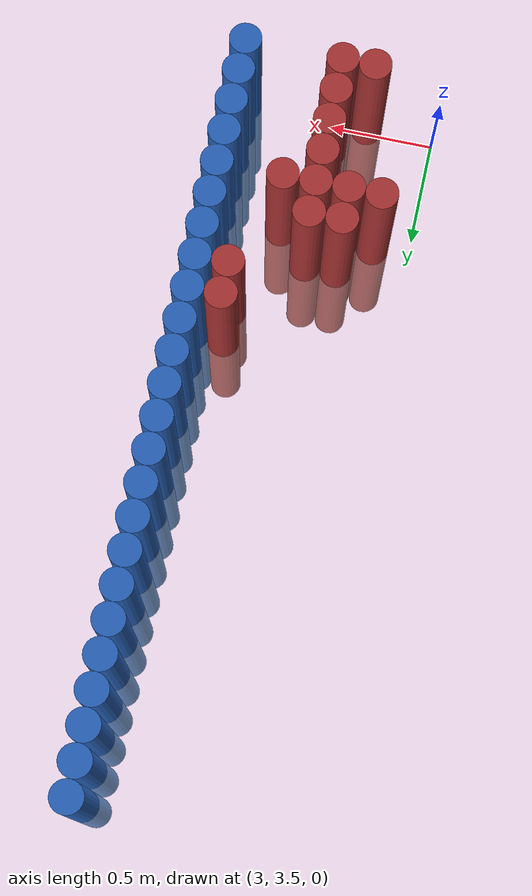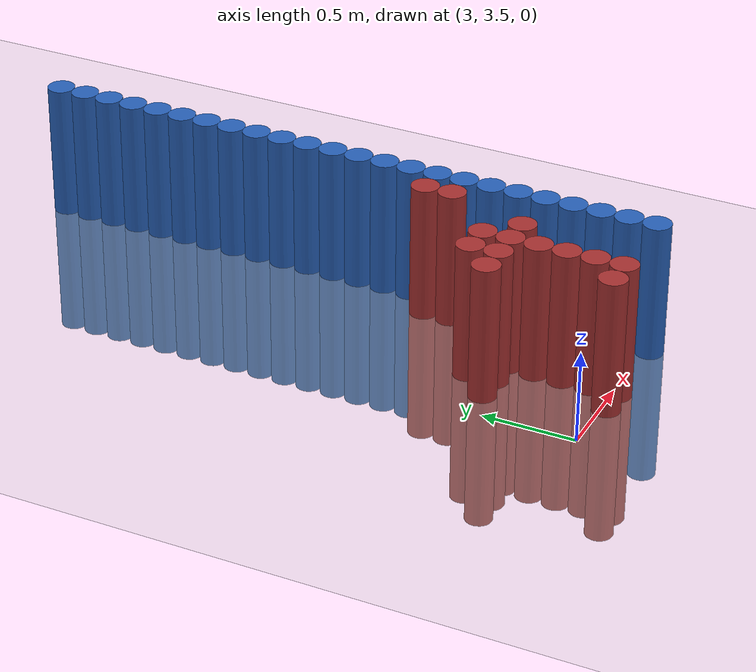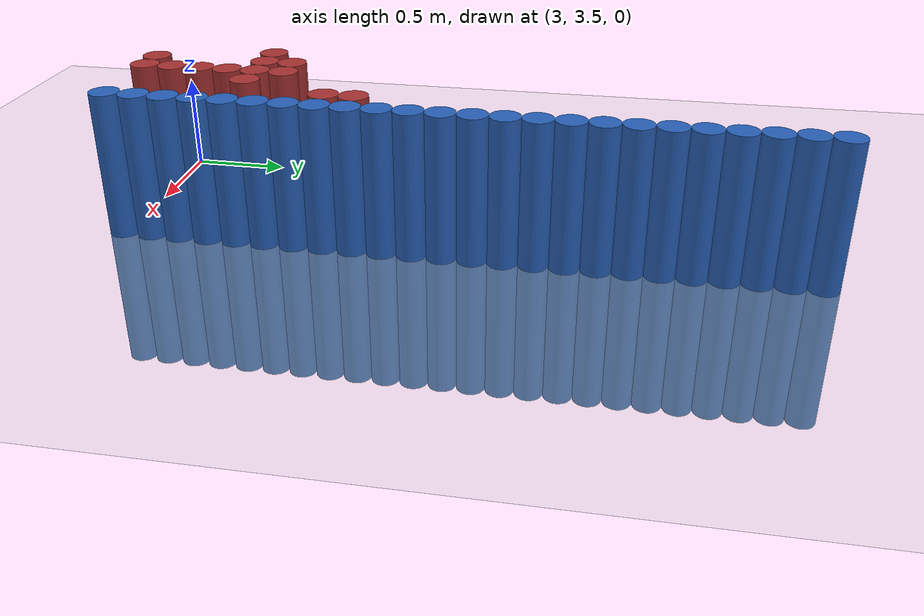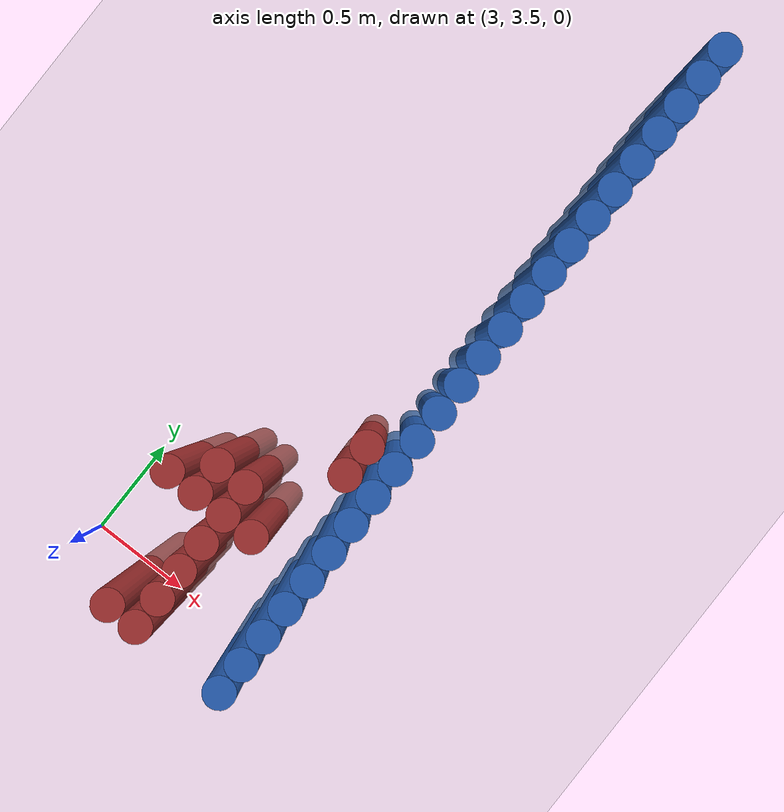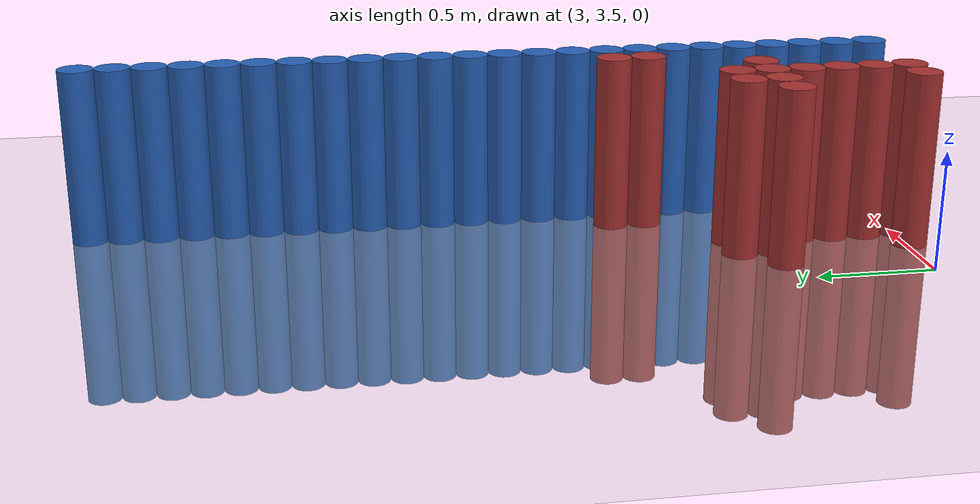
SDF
<sdf version="1.6">
 <world name="default">
  <model name="ground_plane">
   <static>1</static>
   <link name="link">
    <collision name="collision">
     <geometry><plane><normal>0 0 1</normal><size>100 100</size></plane></geometry>
     <surface><friction><ode><mu>100</mu><mu2>50</mu2></ode></friction></surface>
    </collision>
    <visual name="visual">
     <cast_shadows>0</cast_shadows>
     <geometry><plane><normal>0 0 1</normal><size>100 100</size></plane></geometry>
     <material>
      <script><uri>file://media/materials/scripts/gazebo.material</uri><name>Gazebo/Grey</name></script>
     </material>
    </visual>
   </link>
  </model>
  <model name="unit_cylinder_160">
   <static>1</static>
   <pose>3.925000 3.475000 0.000000 0.000000 0.000000 0.000000</pose>
   <link name="link">
    <inertial>
     <mass>1</mass>
     <inertia><ixx>0.145833</ixx><ixy>0</ixy><ixz>0</ixz><iyy>0.145833</iyy><iyz>0</iyz><izz>0.125</izz></inertia>
    </inertial>
    <collision name="collision">
     <geometry><cylinder><radius>0.075000</radius><length>1.5</length></cylinder></geometry>
    </collision>
    <visual name="visual">
     <geometry><cylinder><radius>0.075000</radius><length>1.5</length></cylinder></geometry>
     <material>
      <ambient>0.152000 0.379000 0.720000 1</ambient>
      <diffuse>0.152000 0.379000 0.720000 1</diffuse>
     </material>
     <material>
      <script><name>Gazebo/Grey</name><uri>file://media/materials/scripts/gazebo.material</uri></script>
     </material>
    </visual>
   </link>
  </model>
  <model name="unit_cylinder_162">
   <static>1</static>
   <pose>3.925000 3.625000 0.000000 0.000000 0.000000 0.000000</pose>
   <link name="link">
    <inertial>
     <mass>1</mass>
     <inertia><ixx>0.145833</ixx><ixy>0</ixy><ixz>0</ixz><iyy>0.145833</iyy><iyz>0</iyz><izz>0.125</izz></inertia>
    </inertial>
    <collision name="collision">
     <geometry><cylinder><radius>0.075000</radius><length>1.5</length></cylinder></geometry>
    </collision>
    <visual name="visual">
     <geometry><cylinder><radius>0.075000</radius><length>1.5</length></cylinder></geometry>
     <material>
      <ambient>0.152000 0.379000 0.720000 1</ambient>
      <diffuse>0.152000 0.379000 0.720000 1</diffuse>
     </material>
     <material>
      <script><name>Gazebo/Grey</name><uri>file://media/materials/scripts/gazebo.material</uri></script>
     </material>
    </visual>
   </link>
  </model>
  <model name="unit_cylinder_164">
   <static>1</static>
   <pose>3.925000 3.775000 0.000000 0.000000 0.000000 0.000000</pose>
   <link name="link">
    <inertial>
     <mass>1</mass>
     <inertia><ixx>0.145833</ixx><ixy>0</ixy><ixz>0</ixz><iyy>0.145833</iyy><iyz>0</iyz><izz>0.125</izz></inertia>
    </inertial>
    <collision name="collision">
     <geometry><cylinder><radius>0.075000</radius><length>1.5</length></cylinder></geometry>
    </collision>
    <visual name="visual">
     <geometry><cylinder><radius>0.075000</radius><length>1.5</length></cylinder></geometry>
     <material>
      <ambient>0.152000 0.379000 0.720000 1</ambient>
      <diffuse>0.152000 0.379000 0.720000 1</diffuse>
     </material>
     <material>
      <script><name>Gazebo/Grey</name><uri>file://media/materials/scripts/gazebo.material</uri></script>
     </material>
    </visual>
   </link>
  </model>
  <model name="unit_cylinder_166">
   <static>1</static>
   <pose>3.925000 3.925000 0.000000 0.000000 0.000000 0.000000</pose>
   <link name="link">
    <inertial>
     <mass>1</mass>
     <inertia><ixx>0.145833</ixx><ixy>0</ixy><ixz>0</ixz><iyy>0.145833</iyy><iyz>0</iyz><izz>0.125</izz></inertia>
    </inertial>
    <collision name="collision">
     <geometry><cylinder><radius>0.075000</radius><length>1.5</length></cylinder></geometry>
    </collision>
    <visual name="visual">
     <geometry><cylinder><radius>0.075000</radius><length>1.5</length></cylinder></geometry>
     <material>
      <ambient>0.152000 0.379000 0.720000 1</ambient>
      <diffuse>0.152000 0.379000 0.720000 1</diffuse>
     </material>
     <material>
      <script><name>Gazebo/Grey</name><uri>file://media/materials/scripts/gazebo.material</uri></script>
     </material>
    </visual>
   </link>
  </model>
  <model name="unit_cylinder_168">
   <static>1</static>
   <pose>3.925000 4.075000 0.000000 0.000000 0.000000 0.000000</pose>
   <link name="link">
    <inertial>
     <mass>1</mass>
     <inertia><ixx>0.145833</ixx><ixy>0</ixy><ixz>0</ixz><iyy>0.145833</iyy><iyz>0</iyz><izz>0.125</izz></inertia>
    </inertial>
    <collision name="collision">
     <geometry><cylinder><radius>0.075000</radius><length>1.5</length></cylinder></geometry>
    </collision>
    <visual name="visual">
     <geometry><cylinder><radius>0.075000</radius><length>1.5</length></cylinder></geometry>
     <material>
      <ambient>0.152000 0.379000 0.720000 1</ambient>
      <diffuse>0.152000 0.379000 0.720000 1</diffuse>
     </material>
     <material>
      <script><name>Gazebo/Grey</name><uri>file://media/materials/scripts/gazebo.material</uri></script>
     </material>
    </visual>
   </link>
  </model>
  <model name="unit_cylinder_170">
   <static>1</static>
   <pose>3.925000 4.225000 0.000000 0.000000 0.000000 0.000000</pose>
   <link name="link">
    <inertial>
     <mass>1</mass>
     <inertia><ixx>0.145833</ixx><ixy>0</ixy><ixz>0</ixz><iyy>0.145833</iyy><iyz>0</iyz><izz>0.125</izz></inertia>
    </inertial>
    <collision name="collision">
     <geometry><cylinder><radius>0.075000</radius><length>1.5</length></cylinder></geometry>
    </collision>
    <visual name="visual">
     <geometry><cylinder><radius>0.075000</radius><length>1.5</length></cylinder></geometry>
     <material>
      <ambient>0.152000 0.379000 0.720000 1</ambient>
      <diffuse>0.152000 0.379000 0.720000 1</diffuse>
     </material>
     <material>
      <script><name>Gazebo/Grey</name><uri>file://media/materials/scripts/gazebo.material</uri></script>
     </material>
    </visual>
   </link>
  </model>
  <model name="unit_cylinder_172">
   <static>1</static>
   <pose>3.925000 4.375000 0.000000 0.000000 0.000000 0.000000</pose>
   <link name="link">
    <inertial>
     <mass>1</mass>
     <inertia><ixx>0.145833</ixx><ixy>0</ixy><ixz>0</ixz><iyy>0.145833</iyy><iyz>0</iyz><izz>0.125</izz></inertia>
    </inertial>
    <collision name="collision">
     <geometry><cylinder><radius>0.075000</radius><length>1.5</length></cylinder></geometry>
    </collision>
    <visual name="visual">
     <geometry><cylinder><radius>0.075000</radius><length>1.5</length></cylinder></geometry>
     <material>
      <ambient>0.152000 0.379000 0.720000 1</ambient>
      <diffuse>0.152000 0.379000 0.720000 1</diffuse>
     </material>
     <material>
      <script><name>Gazebo/Grey</name><uri>file://media/materials/scripts/gazebo.material</uri></script>
     </material>
    </visual>
   </link>
  </model>
  <model name="unit_cylinder_174">
   <static>1</static>
   <pose>3.925000 4.525000 0.000000 0.000000 0.000000 0.000000</pose>
   <link name="link">
    <inertial>
     <mass>1</mass>
     <inertia><ixx>0.145833</ixx><ixy>0</ixy><ixz>0</ixz><iyy>0.145833</iyy><iyz>0</iyz><izz>0.125</izz></inertia>
    </inertial>
    <collision name="collision">
     <geometry><cylinder><radius>0.075000</radius><length>1.5</length></cylinder></geometry>
    </collision>
    <visual name="visual">
     <geometry><cylinder><radius>0.075000</radius><length>1.5</length></cylinder></geometry>
     <material>
      <ambient>0.152000 0.379000 0.720000 1</ambient>
      <diffuse>0.152000 0.379000 0.720000 1</diffuse>
     </material>
     <material>
      <script><name>Gazebo/Grey</name><uri>file://media/materials/scripts/gazebo.material</uri></script>
     </material>
    </visual>
   </link>
  </model>
  <model name="unit_cylinder_176">
   <static>1</static>
   <pose>3.925000 4.675000 0.000000 0.000000 0.000000 0.000000</pose>
   <link name="link">
    <inertial>
     <mass>1</mass>
     <inertia><ixx>0.145833</ixx><ixy>0</ixy><ixz>0</ixz><iyy>0.145833</iyy><iyz>0</iyz><izz>0.125</izz></inertia>
    </inertial>
    <collision name="collision">
     <geometry><cylinder><radius>0.075000</radius><length>1.5</length></cylinder></geometry>
    </collision>
    <visual name="visual">
     <geometry><cylinder><radius>0.075000</radius><length>1.5</length></cylinder></geometry>
     <material>
      <ambient>0.152000 0.379000 0.720000 1</ambient>
      <diffuse>0.152000 0.379000 0.720000 1</diffuse>
     </material>
     <material>
      <script><name>Gazebo/Grey</name><uri>file://media/materials/scripts/gazebo.material</uri></script>
     </material>
    </visual>
   </link>
  </model>
  <model name="unit_cylinder_178">
   <static>1</static>
   <pose>3.925000 4.825000 0.000000 0.000000 0.000000 0.000000</pose>
   <link name="link">
    <inertial>
     <mass>1</mass>
     <inertia><ixx>0.145833</ixx><ixy>0</ixy><ixz>0</ixz><iyy>0.145833</iyy><iyz>0</iyz><izz>0.125</izz></inertia>
    </inertial>
    <collision name="collision">
     <geometry><cylinder><radius>0.075000</radius><length>1.5</length></cylinder></geometry>
    </collision>
    <visual name="visual">
     <geometry><cylinder><radius>0.075000</radius><length>1.5</length></cylinder></geometry>
     <material>
      <ambient>0.152000 0.379000 0.720000 1</ambient>
      <diffuse>0.152000 0.379000 0.720000 1</diffuse>
     </material>
     <material>
      <script><name>Gazebo/Grey</name><uri>file://media/materials/scripts/gazebo.material</uri></script>
     </material>
    </visual>
   </link>
  </model>
  <model name="unit_cylinder_180">
   <static>1</static>
   <pose>3.925000 4.975000 0.000000 0.000000 0.000000 0.000000</pose>
   <link name="link">
    <inertial>
     <mass>1</mass>
     <inertia><ixx>0.145833</ixx><ixy>0</ixy><ixz>0</ixz><iyy>0.145833</iyy><iyz>0</iyz><izz>0.125</izz></inertia>
    </inertial>
    <collision name="collision">
     <geometry><cylinder><radius>0.075000</radius><length>1.5</length></cylinder></geometry>
    </collision>
    <visual name="visual">
     <geometry><cylinder><radius>0.075000</radius><length>1.5</length></cylinder></geometry>
     <material>
      <ambient>0.152000 0.379000 0.720000 1</ambient>
      <diffuse>0.152000 0.379000 0.720000 1</diffuse>
     </material>
     <material>
      <script><name>Gazebo/Grey</name><uri>file://media/materials/scripts/gazebo.material</uri></script>
     </material>
    </visual>
   </link>
  </model>
  <model name="unit_cylinder_182">
   <static>1</static>
   <pose>3.925000 5.125000 0.000000 0.000000 0.000000 0.000000</pose>
   <link name="link">
    <inertial>
     <mass>1</mass>
     <inertia><ixx>0.145833</ixx><ixy>0</ixy><ixz>0</ixz><iyy>0.145833</iyy><iyz>0</iyz><izz>0.125</izz></inertia>
    </inertial>
    <collision name="collision">
     <geometry><cylinder><radius>0.075000</radius><length>1.5</length></cylinder></geometry>
    </collision>
    <visual name="visual">
     <geometry><cylinder><radius>0.075000</radius><length>1.5</length></cylinder></geometry>
     <material>
      <ambient>0.152000 0.379000 0.720000 1</ambient>
      <diffuse>0.152000 0.379000 0.720000 1</diffuse>
     </material>
     <material>
      <script><name>Gazebo/Grey</name><uri>file://media/materials/scripts/gazebo.material</uri></script>
     </material>
    </visual>
   </link>
  </model>
  <model name="unit_cylinder_184">
   <static>1</static>
   <pose>3.925000 5.275000 0.000000 0.000000 0.000000 0.000000</pose>
   <link name="link">
    <inertial>
     <mass>1</mass>
     <inertia><ixx>0.145833</ixx><ixy>0</ixy><ixz>0</ixz><iyy>0.145833</iyy><iyz>0</iyz><izz>0.125</izz></inertia>
    </inertial>
    <collision name="collision">
     <geometry><cylinder><radius>0.075000</radius><length>1.5</length></cylinder></geometry>
    </collision>
    <visual name="visual">
     <geometry><cylinder><radius>0.075000</radius><length>1.5</length></cylinder></geometry>
     <material>
      <ambient>0.152000 0.379000 0.720000 1</ambient>
      <diffuse>0.152000 0.379000 0.720000 1</diffuse>
     </material>
     <material>
      <script><name>Gazebo/Grey</name><uri>file://media/materials/scripts/gazebo.material</uri></script>
     </material>
    </visual>
   </link>
  </model>
  <model name="unit_cylinder_186">
   <static>1</static>
   <pose>3.925000 5.425000 0.000000 0.000000 0.000000 0.000000</pose>
   <link name="link">
    <inertial>
     <mass>1</mass>
     <inertia><ixx>0.145833</ixx><ixy>0</ixy><ixz>0</ixz><iyy>0.145833</iyy><iyz>0</iyz><izz>0.125</izz></inertia>
    </inertial>
    <collision name="collision">
     <geometry><cylinder><radius>0.075000</radius><length>1.5</length></cylinder></geometry>
    </collision>
    <visual name="visual">
     <geometry><cylinder><radius>0.075000</radius><length>1.5</length></cylinder></geometry>
     <material>
      <ambient>0.152000 0.379000 0.720000 1</ambient>
      <diffuse>0.152000 0.379000 0.720000 1</diffuse>
     </material>
     <material>
      <script><name>Gazebo/Grey</name><uri>file://media/materials/scripts/gazebo.material</uri></script>
     </material>
    </visual>
   </link>
  </model>
  <model name="unit_cylinder_188">
   <static>1</static>
   <pose>3.925000 5.575000 0.000000 0.000000 0.000000 0.000000</pose>
   <link name="link">
    <inertial>
     <mass>1</mass>
     <inertia><ixx>0.145833</ixx><ixy>0</ixy><ixz>0</ixz><iyy>0.145833</iyy><iyz>0</iyz><izz>0.125</izz></inertia>
    </inertial>
    <collision name="collision">
     <geometry><cylinder><radius>0.075000</radius><length>1.5</length></cylinder></geometry>
    </collision>
    <visual name="visual">
     <geometry><cylinder><radius>0.075000</radius><length>1.5</length></cylinder></geometry>
     <material>
      <ambient>0.152000 0.379000 0.720000 1</ambient>
      <diffuse>0.152000 0.379000 0.720000 1</diffuse>
     </material>
     <material>
      <script><name>Gazebo/Grey</name><uri>file://media/materials/scripts/gazebo.material</uri></script>
     </material>
    </visual>
   </link>
  </model>
  <model name="unit_cylinder_190">
   <static>1</static>
   <pose>3.925000 5.725000 0.000000 0.000000 0.000000 0.000000</pose>
   <link name="link">
    <inertial>
     <mass>1</mass>
     <inertia><ixx>0.145833</ixx><ixy>0</ixy><ixz>0</ixz><iyy>0.145833</iyy><iyz>0</iyz><izz>0.125</izz></inertia>
    </inertial>
    <collision name="collision">
     <geometry><cylinder><radius>0.075000</radius><length>1.5</length></cylinder></geometry>
    </collision>
    <visual name="visual">
     <geometry><cylinder><radius>0.075000</radius><length>1.5</length></cylinder></geometry>
     <material>
      <ambient>0.152000 0.379000 0.720000 1</ambient>
      <diffuse>0.152000 0.379000 0.720000 1</diffuse>
     </material>
     <material>
      <script><name>Gazebo/Grey</name><uri>file://media/materials/scripts/gazebo.material</uri></script>
     </material>
    </visual>
   </link>
  </model>
  <model name="unit_cylinder_192">
   <static>1</static>
   <pose>3.925000 5.875000 0.000000 0.000000 0.000000 0.000000</pose>
   <link name="link">
    <inertial>
     <mass>1</mass>
     <inertia><ixx>0.145833</ixx><ixy>0</ixy><ixz>0</ixz><iyy>0.145833</iyy><iyz>0</iyz><izz>0.125</izz></inertia>
    </inertial>
    <collision name="collision">
     <geometry><cylinder><radius>0.075000</radius><length>1.5</length></cylinder></geometry>
    </collision>
    <visual name="visual">
     <geometry><cylinder><radius>0.075000</radius><length>1.5</length></cylinder></geometry>
     <material>
      <ambient>0.152000 0.379000 0.720000 1</ambient>
      <diffuse>0.152000 0.379000 0.720000 1</diffuse>
     </material>
     <material>
      <script><name>Gazebo/Grey</name><uri>file://media/materials/scripts/gazebo.material</uri></script>
     </material>
    </visual>
   </link>
  </model>
  <model name="unit_cylinder_194">
   <static>1</static>
   <pose>3.925000 6.025000 0.000000 0.000000 0.000000 0.000000</pose>
   <link name="link">
    <inertial>
     <mass>1</mass>
     <inertia><ixx>0.145833</ixx><ixy>0</ixy><ixz>0</ixz><iyy>0.145833</iyy><iyz>0</iyz><izz>0.125</izz></inertia>
    </inertial>
    <collision name="collision">
     <geometry><cylinder><radius>0.075000</radius><length>1.5</length></cylinder></geometry>
    </collision>
    <visual name="visual">
     <geometry><cylinder><radius>0.075000</radius><length>1.5</length></cylinder></geometry>
     <material>
      <ambient>0.152000 0.379000 0.720000 1</ambient>
      <diffuse>0.152000 0.379000 0.720000 1</diffuse>
     </material>
     <material>
      <script><name>Gazebo/Grey</name><uri>file://media/materials/scripts/gazebo.material</uri></script>
     </material>
    </visual>
   </link>
  </model>
  <model name="unit_cylinder_196">
   <static>1</static>
   <pose>3.925000 6.175000 0.000000 0.000000 0.000000 0.000000</pose>
   <link name="link">
    <inertial>
     <mass>1</mass>
     <inertia><ixx>0.145833</ixx><ixy>0</ixy><ixz>0</ixz><iyy>0.145833</iyy><iyz>0</iyz><izz>0.125</izz></inertia>
    </inertial>
    <collision name="collision">
     <geometry><cylinder><radius>0.075000</radius><length>1.5</length></cylinder></geometry>
    </collision>
    <visual name="visual">
     <geometry><cylinder><radius>0.075000</radius><length>1.5</length></cylinder></geometry>
     <material>
      <ambient>0.152000 0.379000 0.720000 1</ambient>
      <diffuse>0.152000 0.379000 0.720000 1</diffuse>
     </material>
     <material>
      <script><name>Gazebo/Grey</name><uri>file://media/materials/scripts/gazebo.material</uri></script>
     </material>
    </visual>
   </link>
  </model>
  <model name="unit_cylinder_198">
   <static>1</static>
   <pose>3.925000 6.325000 0.000000 0.000000 0.000000 0.000000</pose>
   <link name="link">
    <inertial>
     <mass>1</mass>
     <inertia><ixx>0.145833</ixx><ixy>0</ixy><ixz>0</ixz><iyy>0.145833</iyy><iyz>0</iyz><izz>0.125</izz></inertia>
    </inertial>
    <collision name="collision">
     <geometry><cylinder><radius>0.075000</radius><length>1.5</length></cylinder></geometry>
    </collision>
    <visual name="visual">
     <geometry><cylinder><radius>0.075000</radius><length>1.5</length></cylinder></geometry>
     <material>
      <ambient>0.152000 0.379000 0.720000 1</ambient>
      <diffuse>0.152000 0.379000 0.720000 1</diffuse>
     </material>
     <material>
      <script><name>Gazebo/Grey</name><uri>file://media/materials/scripts/gazebo.material</uri></script>
     </material>
    </visual>
   </link>
  </model>
  <model name="unit_cylinder_200">
   <static>1</static>
   <pose>3.925000 6.475000 0.000000 0.000000 0.000000 0.000000</pose>
   <link name="link">
    <inertial>
     <mass>1</mass>
     <inertia><ixx>0.145833</ixx><ixy>0</ixy><ixz>0</ixz><iyy>0.145833</iyy><iyz>0</iyz><izz>0.125</izz></inertia>
    </inertial>
    <collision name="collision">
     <geometry><cylinder><radius>0.075000</radius><length>1.5</length></cylinder></geometry>
    </collision>
    <visual name="visual">
     <geometry><cylinder><radius>0.075000</radius><length>1.5</length></cylinder></geometry>
     <material>
      <ambient>0.152000 0.379000 0.720000 1</ambient>
      <diffuse>0.152000 0.379000 0.720000 1</diffuse>
     </material>
     <material>
      <script><name>Gazebo/Grey</name><uri>file://media/materials/scripts/gazebo.material</uri></script>
     </material>
    </visual>
   </link>
  </model>
  <model name="unit_cylinder_202">
   <static>1</static>
   <pose>3.925000 6.625000 0.000000 0.000000 0.000000 0.000000</pose>
   <link name="link">
    <inertial>
     <mass>1</mass>
     <inertia><ixx>0.145833</ixx><ixy>0</ixy><ixz>0</ixz><iyy>0.145833</iyy><iyz>0</iyz><izz>0.125</izz></inertia>
    </inertial>
    <collision name="collision">
     <geometry><cylinder><radius>0.075000</radius><length>1.5</length></cylinder></geometry>
    </collision>
    <visual name="visual">
     <geometry><cylinder><radius>0.075000</radius><length>1.5</length></cylinder></geometry>
     <material>
      <ambient>0.152000 0.379000 0.720000 1</ambient>
      <diffuse>0.152000 0.379000 0.720000 1</diffuse>
     </material>
     <material>
      <script><name>Gazebo/Grey</name><uri>file://media/materials/scripts/gazebo.material</uri></script>
     </material>
    </visual>
   </link>
  </model>
  <model name="unit_cylinder_204">
   <static>1</static>
   <pose>3.925000 6.775000 0.000000 0.000000 0.000000 0.000000</pose>
   <link name="link">
    <inertial>
     <mass>1</mass>
     <inertia><ixx>0.145833</ixx><ixy>0</ixy><ixz>0</ixz><iyy>0.145833</iyy><iyz>0</iyz><izz>0.125</izz></inertia>
    </inertial>
    <collision name="collision">
     <geometry><cylinder><radius>0.075000</radius><length>1.5</length></cylinder></geometry>
    </collision>
    <visual name="visual">
     <geometry><cylinder><radius>0.075000</radius><length>1.5</length></cylinder></geometry>
     <material>
      <ambient>0.152000 0.379000 0.720000 1</ambient>
      <diffuse>0.152000 0.379000 0.720000 1</diffuse>
     </material>
     <material>
      <script><name>Gazebo/Grey</name><uri>file://media/materials/scripts/gazebo.material</uri></script>
     </material>
    </visual>
   </link>
  </model>
  <model name="unit_cylinder_206">
   <static>1</static>
   <pose>3.925000 6.925000 0.000000 0.000000 0.000000 0.000000</pose>
   <link name="link">
    <inertial>
     <mass>1</mass>
     <inertia><ixx>0.145833</ixx><ixy>0</ixy><ixz>0</ixz><iyy>0.145833</iyy><iyz>0</iyz><izz>0.125</izz></inertia>
    </inertial>
    <collision name="collision">
     <geometry><cylinder><radius>0.075000</radius><length>1.5</length></cylinder></geometry>
    </collision>
    <visual name="visual">
     <geometry><cylinder><radius>0.075000</radius><length>1.5</length></cylinder></geometry>
     <material>
      <ambient>0.152000 0.379000 0.720000 1</ambient>
      <diffuse>0.152000 0.379000 0.720000 1</diffuse>
     </material>
     <material>
      <script><name>Gazebo/Grey</name><uri>file://media/materials/scripts/gazebo.material</uri></script>
     </material>
    </visual>
   </link>
  </model>
  <model name="unit_cylinder_549">
   <static>1</static>
   <pose>3.175000 4.075000 0.000000 0.000000 0.000000 0.000000</pose>
   <link name="link">
    <inertial>
     <mass>1</mass>
     <inertia><ixx>0.145833</ixx><ixy>0</ixy><ixz>0</ixz><iyy>0.145833</iyy><iyz>0</iyz><izz>0.125</izz></inertia>
    </inertial>
    <collision name="collision">
     <geometry><cylinder><radius>0.075000</radius><length>1.5</length></cylinder></geometry>
    </collision>
    <visual name="visual">
     <geometry><cylinder><radius>0.075000</radius><length>1.5</length></cylinder></geometry>
     <material>
      <ambient>0.648000 0.192000 0.192000 1</ambient>
      <diffuse>0.648000 0.192000 0.192000 1</diffuse>
     </material>
     <material>
      <script><name>Gazebo/Grey</name><uri>file://media/materials/scripts/gazebo.material</uri></script>
     </material>
    </visual>
   </link>
  </model>
  <model name="unit_cylinder_561">
   <static>1</static>
   <pose>3.325000 3.475000 0.000000 0.000000 0.000000 0.000000</pose>
   <link name="link">
    <inertial>
     <mass>1</mass>
     <inertia><ixx>0.145833</ixx><ixy>0</ixy><ixz>0</ixz><iyy>0.145833</iyy><iyz>0</iyz><izz>0.125</izz></inertia>
    </inertial>
    <collision name="collision">
     <geometry><cylinder><radius>0.075000</radius><length>1.5</length></cylinder></geometry>
    </collision>
    <visual name="visual">
     <geometry><cylinder><radius>0.075000</radius><length>1.5</length></cylinder></geometry>
     <material>
      <ambient>0.648000 0.192000 0.192000 1</ambient>
      <diffuse>0.648000 0.192000 0.192000 1</diffuse>
     </material>
     <material>
      <script><name>Gazebo/Grey</name><uri>file://media/materials/scripts/gazebo.material</uri></script>
     </material>
    </visual>
   </link>
  </model>
  <model name="unit_cylinder_562">
   <static>1</static>
   <pose>3.325000 4.075000 0.000000 0.000000 0.000000 0.000000</pose>
   <link name="link">
    <inertial>
     <mass>1</mass>
     <inertia><ixx>0.145833</ixx><ixy>0</ixy><ixz>0</ixz><iyy>0.145833</iyy><iyz>0</iyz><izz>0.125</izz></inertia>
    </inertial>
    <collision name="collision">
     <geometry><cylinder><radius>0.075000</radius><length>1.5</length></cylinder></geometry>
    </collision>
    <visual name="visual">
     <geometry><cylinder><radius>0.075000</radius><length>1.5</length></cylinder></geometry>
     <material>
      <ambient>0.648000 0.192000 0.192000 1</ambient>
      <diffuse>0.648000 0.192000 0.192000 1</diffuse>
     </material>
     <material>
      <script><name>Gazebo/Grey</name><uri>file://media/materials/scripts/gazebo.material</uri></script>
     </material>
    </visual>
   </link>
  </model>
  <model name="unit_cylinder_563">
   <static>1</static>
   <pose>3.325000 4.225000 0.000000 0.000000 0.000000 0.000000</pose>
   <link name="link">
    <inertial>
     <mass>1</mass>
     <inertia><ixx>0.145833</ixx><ixy>0</ixy><ixz>0</ixz><iyy>0.145833</iyy><iyz>0</iyz><izz>0.125</izz></inertia>
    </inertial>
    <collision name="collision">
     <geometry><cylinder><radius>0.075000</radius><length>1.5</length></cylinder></geometry>
    </collision>
    <visual name="visual">
     <geometry><cylinder><radius>0.075000</radius><length>1.5</length></cylinder></geometry>
     <material>
      <ambient>0.648000 0.192000 0.192000 1</ambient>
      <diffuse>0.648000 0.192000 0.192000 1</diffuse>
     </material>
     <material>
      <script><name>Gazebo/Grey</name><uri>file://media/materials/scripts/gazebo.material</uri></script>
     </material>
    </visual>
   </link>
  </model>
  <model name="unit_cylinder_574">
   <static>1</static>
   <pose>3.475000 3.475000 0.000000 0.000000 0.000000 0.000000</pose>
   <link name="link">
    <inertial>
     <mass>1</mass>
     <inertia><ixx>0.145833</ixx><ixy>0</ixy><ixz>0</ixz><iyy>0.145833</iyy><iyz>0</iyz><izz>0.125</izz></inertia>
    </inertial>
    <collision name="collision">
     <geometry><cylinder><radius>0.075000</radius><length>1.5</length></cylinder></geometry>
    </collision>
    <visual name="visual">
     <geometry><cylinder><radius>0.075000</radius><length>1.5</length></cylinder></geometry>
     <material>
      <ambient>0.648000 0.192000 0.192000 1</ambient>
      <diffuse>0.648000 0.192000 0.192000 1</diffuse>
     </material>
     <material>
      <script><name>Gazebo/Grey</name><uri>file://media/materials/scripts/gazebo.material</uri></script>
     </material>
    </visual>
   </link>
  </model>
  <model name="unit_cylinder_575">
   <static>1</static>
   <pose>3.475000 3.625000 0.000000 0.000000 0.000000 0.000000</pose>
   <link name="link">
    <inertial>
     <mass>1</mass>
     <inertia><ixx>0.145833</ixx><ixy>0</ixy><ixz>0</ixz><iyy>0.145833</iyy><iyz>0</iyz><izz>0.125</izz></inertia>
    </inertial>
    <collision name="collision">
     <geometry><cylinder><radius>0.075000</radius><length>1.5</length></cylinder></geometry>
    </collision>
    <visual name="visual">
     <geometry><cylinder><radius>0.075000</radius><length>1.5</length></cylinder></geometry>
     <material>
      <ambient>0.648000 0.192000 0.192000 1</ambient>
      <diffuse>0.648000 0.192000 0.192000 1</diffuse>
     </material>
     <material>
      <script><name>Gazebo/Grey</name><uri>file://media/materials/scripts/gazebo.material</uri></script>
     </material>
    </visual>
   </link>
  </model>
  <model name="unit_cylinder_576">
   <static>1</static>
   <pose>3.475000 3.775000 0.000000 0.000000 0.000000 0.000000</pose>
   <link name="link">
    <inertial>
     <mass>1</mass>
     <inertia><ixx>0.145833</ixx><ixy>0</ixy><ixz>0</ixz><iyy>0.145833</iyy><iyz>0</iyz><izz>0.125</izz></inertia>
    </inertial>
    <collision name="collision">
     <geometry><cylinder><radius>0.075000</radius><length>1.5</length></cylinder></geometry>
    </collision>
    <visual name="visual">
     <geometry><cylinder><radius>0.075000</radius><length>1.5</length></cylinder></geometry>
     <material>
      <ambient>0.648000 0.192000 0.192000 1</ambient>
      <diffuse>0.648000 0.192000 0.192000 1</diffuse>
     </material>
     <material>
      <script><name>Gazebo/Grey</name><uri>file://media/materials/scripts/gazebo.material</uri></script>
     </material>
    </visual>
   </link>
  </model>
  <model name="unit_cylinder_577">
   <static>1</static>
   <pose>3.475000 3.925000 0.000000 0.000000 0.000000 0.000000</pose>
   <link name="link">
    <inertial>
     <mass>1</mass>
     <inertia><ixx>0.145833</ixx><ixy>0</ixy><ixz>0</ixz><iyy>0.145833</iyy><iyz>0</iyz><izz>0.125</izz></inertia>
    </inertial>
    <collision name="collision">
     <geometry><cylinder><radius>0.075000</radius><length>1.5</length></cylinder></geometry>
    </collision>
    <visual name="visual">
     <geometry><cylinder><radius>0.075000</radius><length>1.5</length></cylinder></geometry>
     <material>
      <ambient>0.648000 0.192000 0.192000 1</ambient>
      <diffuse>0.648000 0.192000 0.192000 1</diffuse>
     </material>
     <material>
      <script><name>Gazebo/Grey</name><uri>file://media/materials/scripts/gazebo.material</uri></script>
     </material>
    </visual>
   </link>
  </model>
  <model name="unit_cylinder_578">
   <static>1</static>
   <pose>3.475000 4.075000 0.000000 0.000000 0.000000 0.000000</pose>
   <link name="link">
    <inertial>
     <mass>1</mass>
     <inertia><ixx>0.145833</ixx><ixy>0</ixy><ixz>0</ixz><iyy>0.145833</iyy><iyz>0</iyz><izz>0.125</izz></inertia>
    </inertial>
    <collision name="collision">
     <geometry><cylinder><radius>0.075000</radius><length>1.5</length></cylinder></geometry>
    </collision>
    <visual name="visual">
     <geometry><cylinder><radius>0.075000</radius><length>1.5</length></cylinder></geometry>
     <material>
      <ambient>0.648000 0.192000 0.192000 1</ambient>
      <diffuse>0.648000 0.192000 0.192000 1</diffuse>
     </material>
     <material>
      <script><name>Gazebo/Grey</name><uri>file://media/materials/scripts/gazebo.material</uri></script>
     </material>
    </visual>
   </link>
  </model>
  <model name="unit_cylinder_579">
   <static>1</static>
   <pose>3.475000 4.225000 0.000000 0.000000 0.000000 0.000000</pose>
   <link name="link">
    <inertial>
     <mass>1</mass>
     <inertia><ixx>0.145833</ixx><ixy>0</ixy><ixz>0</ixz><iyy>0.145833</iyy><iyz>0</iyz><izz>0.125</izz></inertia>
    </inertial>
    <collision name="collision">
     <geometry><cylinder><radius>0.075000</radius><length>1.5</length></cylinder></geometry>
    </collision>
    <visual name="visual">
     <geometry><cylinder><radius>0.075000</radius><length>1.5</length></cylinder></geometry>
     <material>
      <ambient>0.648000 0.192000 0.192000 1</ambient>
      <diffuse>0.648000 0.192000 0.192000 1</diffuse>
     </material>
     <material>
      <script><name>Gazebo/Grey</name><uri>file://media/materials/scripts/gazebo.material</uri></script>
     </material>
    </visual>
   </link>
  </model>
  <model name="unit_cylinder_591">
   <static>1</static>
   <pose>3.625000 4.075000 0.000000 0.000000 0.000000 0.000000</pose>
   <link name="link">
    <inertial>
     <mass>1</mass>
     <inertia><ixx>0.145833</ixx><ixy>0</ixy><ixz>0</ixz><iyy>0.145833</iyy><iyz>0</iyz><izz>0.125</izz></inertia>
    </inertial>
    <collision name="collision">
     <geometry><cylinder><radius>0.075000</radius><length>1.5</length></cylinder></geometry>
    </collision>
    <visual name="visual">
     <geometry><cylinder><radius>0.075000</radius><length>1.5</length></cylinder></geometry>
     <material>
      <ambient>0.648000 0.192000 0.192000 1</ambient>
      <diffuse>0.648000 0.192000 0.192000 1</diffuse>
     </material>
     <material>
      <script><name>Gazebo/Grey</name><uri>file://media/materials/scripts/gazebo.material</uri></script>
     </material>
    </visual>
   </link>
  </model>
  <model name="unit_cylinder_605">
   <static>1</static>
   <pose>3.775000 4.525000 0.000000 0.000000 0.000000 0.000000</pose>
   <link name="link">
    <inertial>
     <mass>1</mass>
     <inertia><ixx>0.145833</ixx><ixy>0</ixy><ixz>0</ixz><iyy>0.145833</iyy><iyz>0</iyz><izz>0.125</izz></inertia>
    </inertial>
    <collision name="collision">
     <geometry><cylinder><radius>0.075000</radius><length>1.5</length></cylinder></geometry>
    </collision>
    <visual name="visual">
     <geometry><cylinder><radius>0.075000</radius><length>1.5</length></cylinder></geometry>
     <material>
      <ambient>0.648000 0.192000 0.192000 1</ambient>
      <diffuse>0.648000 0.192000 0.192000 1</diffuse>
     </material>
     <material>
      <script><name>Gazebo/Grey</name><uri>file://media/materials/scripts/gazebo.material</uri></script>
     </material>
    </visual>
   </link>
  </model>
  <model name="unit_cylinder_606">
   <static>1</static>
   <pose>3.775000 4.675000 0.000000 0.000000 0.000000 0.000000</pose>
   <link name="link">
    <inertial>
     <mass>1</mass>
     <inertia><ixx>0.145833</ixx><ixy>0</ixy><ixz>0</ixz><iyy>0.145833</iyy><iyz>0</iyz><izz>0.125</izz></inertia>
    </inertial>
    <collision name="collision">
     <geometry><cylinder><radius>0.075000</radius><length>1.5</length></cylinder></geometry>
    </collision>
    <visual name="visual">
     <geometry><cylinder><radius>0.075000</radius><length>1.5</length></cylinder></geometry>
     <material>
      <ambient>0.648000 0.192000 0.192000 1</ambient>
      <diffuse>0.648000 0.192000 0.192000 1</diffuse>
     </material>
     <material>
      <script><name>Gazebo/Grey</name><uri>file://media/materials/scripts/gazebo.material</uri></script>
     </material>
    </visual>
   </link>
  </model>
  <model name="unit_cylinder_643">
   <static>1</static>
   <pose>3.925000 3.475000 0.000000 0.000000 0.000000 0.000000</pose>
   <link name="link">
    <inertial>
     <mass>1</mass>
     <inertia><ixx>0.145833</ixx><ixy>0</ixy><ixz>0</ixz><iyy>0.145833</iyy><iyz>0</iyz><izz>0.125</izz></inertia>
    </inertial>
    <collision name="collision">
     <geometry><cylinder><radius>0.075000</radius><length>1.5</length></cylinder></geometry>
    </collision>
    <visual name="visual">
     <geometry><cylinder><radius>0.075000</radius><length>1.5</length></cylinder></geometry>
     <material>
      <ambient>0.152000 0.379000 0.720000 1</ambient>
      <diffuse>0.152000 0.379000 0.720000 1</diffuse>
     </material>
     <material>
      <script><name>Gazebo/Grey</name><uri>file://media/materials/scripts/gazebo.material</uri></script>
     </material>
    </visual>
   </link>
  </model>
  <model name="unit_cylinder_644">
   <static>1</static>
   <pose>3.925000 3.625000 0.000000 0.000000 0.000000 0.000000</pose>
   <link name="link">
    <inertial>
     <mass>1</mass>
     <inertia><ixx>0.145833</ixx><ixy>0</ixy><ixz>0</ixz><iyy>0.145833</iyy><iyz>0</iyz><izz>0.125</izz></inertia>
    </inertial>
    <collision name="collision">
     <geometry><cylinder><radius>0.075000</radius><length>1.5</length></cylinder></geometry>
    </collision>
    <visual name="visual">
     <geometry><cylinder><radius>0.075000</radius><length>1.5</length></cylinder></geometry>
     <material>
      <ambient>0.152000 0.379000 0.720000 1</ambient>
      <diffuse>0.152000 0.379000 0.720000 1</diffuse>
     </material>
     <material>
      <script><name>Gazebo/Grey</name><uri>file://media/materials/scripts/gazebo.material</uri></script>
     </material>
    </visual>
   </link>
  </model>
  <model name="unit_cylinder_645">
   <static>1</static>
   <pose>3.925000 3.775000 0.000000 0.000000 0.000000 0.000000</pose>
   <link name="link">
    <inertial>
     <mass>1</mass>
     <inertia><ixx>0.145833</ixx><ixy>0</ixy><ixz>0</ixz><iyy>0.145833</iyy><iyz>0</iyz><izz>0.125</izz></inertia>
    </inertial>
    <collision name="collision">
     <geometry><cylinder><radius>0.075000</radius><length>1.5</length></cylinder></geometry>
    </collision>
    <visual name="visual">
     <geometry><cylinder><radius>0.075000</radius><length>1.5</length></cylinder></geometry>
     <material>
      <ambient>0.152000 0.379000 0.720000 1</ambient>
      <diffuse>0.152000 0.379000 0.720000 1</diffuse>
     </material>
     <material>
      <script><name>Gazebo/Grey</name><uri>file://media/materials/scripts/gazebo.material</uri></script>
     </material>
    </visual>
   </link>
  </model>
  <model name="unit_cylinder_646">
   <static>1</static>
   <pose>3.925000 3.925000 0.000000 0.000000 0.000000 0.000000</pose>
   <link name="link">
    <inertial>
     <mass>1</mass>
     <inertia><ixx>0.145833</ixx><ixy>0</ixy><ixz>0</ixz><iyy>0.145833</iyy><iyz>0</iyz><izz>0.125</izz></inertia>
    </inertial>
    <collision name="collision">
     <geometry><cylinder><radius>0.075000</radius><length>1.5</length></cylinder></geometry>
    </collision>
    <visual name="visual">
     <geometry><cylinder><radius>0.075000</radius><length>1.5</length></cylinder></geometry>
     <material>
      <ambient>0.152000 0.379000 0.720000 1</ambient>
      <diffuse>0.152000 0.379000 0.720000 1</diffuse>
     </material>
     <material>
      <script><name>Gazebo/Grey</name><uri>file://media/materials/scripts/gazebo.material</uri></script>
     </material>
    </visual>
   </link>
  </model>
  <model name="unit_cylinder_647">
   <static>1</static>
   <pose>3.925000 4.075000 0.000000 0.000000 0.000000 0.000000</pose>
   <link name="link">
    <inertial>
     <mass>1</mass>
     <inertia><ixx>0.145833</ixx><ixy>0</ixy><ixz>0</ixz><iyy>0.145833</iyy><iyz>0</iyz><izz>0.125</izz></inertia>
    </inertial>
    <collision name="collision">
     <geometry><cylinder><radius>0.075000</radius><length>1.5</length></cylinder></geometry>
    </collision>
    <visual name="visual">
     <geometry><cylinder><radius>0.075000</radius><length>1.5</length></cylinder></geometry>
     <material>
      <ambient>0.152000 0.379000 0.720000 1</ambient>
      <diffuse>0.152000 0.379000 0.720000 1</diffuse>
     </material>
     <material>
      <script><name>Gazebo/Grey</name><uri>file://media/materials/scripts/gazebo.material</uri></script>
     </material>
    </visual>
   </link>
  </model>
  <model name="unit_cylinder_648">
   <static>1</static>
   <pose>3.925000 4.225000 0.000000 0.000000 0.000000 0.000000</pose>
   <link name="link">
    <inertial>
     <mass>1</mass>
     <inertia><ixx>0.145833</ixx><ixy>0</ixy><ixz>0</ixz><iyy>0.145833</iyy><iyz>0</iyz><izz>0.125</izz></inertia>
    </inertial>
    <collision name="collision">
     <geometry><cylinder><radius>0.075000</radius><length>1.5</length></cylinder></geometry>
    </collision>
    <visual name="visual">
     <geometry><cylinder><radius>0.075000</radius><length>1.5</length></cylinder></geometry>
     <material>
      <ambient>0.152000 0.379000 0.720000 1</ambient>
      <diffuse>0.152000 0.379000 0.720000 1</diffuse>
     </material>
     <material>
      <script><name>Gazebo/Grey</name><uri>file://media/materials/scripts/gazebo.material</uri></script>
     </material>
    </visual>
   </link>
  </model>
  <model name="unit_cylinder_649">
   <static>1</static>
   <pose>3.925000 4.375000 0.000000 0.000000 0.000000 0.000000</pose>
   <link name="link">
    <inertial>
     <mass>1</mass>
     <inertia><ixx>0.145833</ixx><ixy>0</ixy><ixz>0</ixz><iyy>0.145833</iyy><iyz>0</iyz><izz>0.125</izz></inertia>
    </inertial>
    <collision name="collision">
     <geometry><cylinder><radius>0.075000</radius><length>1.5</length></cylinder></geometry>
    </collision>
    <visual name="visual">
     <geometry><cylinder><radius>0.075000</radius><length>1.5</length></cylinder></geometry>
     <material>
      <ambient>0.152000 0.379000 0.720000 1</ambient>
      <diffuse>0.152000 0.379000 0.720000 1</diffuse>
     </material>
     <material>
      <script><name>Gazebo/Grey</name><uri>file://media/materials/scripts/gazebo.material</uri></script>
     </material>
    </visual>
   </link>
  </model>
  <model name="unit_cylinder_650">
   <static>1</static>
   <pose>3.925000 4.525000 0.000000 0.000000 0.000000 0.000000</pose>
   <link name="link">
    <inertial>
     <mass>1</mass>
     <inertia><ixx>0.145833</ixx><ixy>0</ixy><ixz>0</ixz><iyy>0.145833</iyy><iyz>0</iyz><izz>0.125</izz></inertia>
    </inertial>
    <collision name="collision">
     <geometry><cylinder><radius>0.075000</radius><length>1.5</length></cylinder></geometry>
    </collision>
    <visual name="visual">
     <geometry><cylinder><radius>0.075000</radius><length>1.5</length></cylinder></geometry>
     <material>
      <ambient>0.152000 0.379000 0.720000 1</ambient>
      <diffuse>0.152000 0.379000 0.720000 1</diffuse>
     </material>
     <material>
      <script><name>Gazebo/Grey</name><uri>file://media/materials/scripts/gazebo.material</uri></script>
     </material>
    </visual>
   </link>
  </model>
  <model name="unit_cylinder_651">
   <static>1</static>
   <pose>3.925000 4.675000 0.000000 0.000000 0.000000 0.000000</pose>
   <link name="link">
    <inertial>
     <mass>1</mass>
     <inertia><ixx>0.145833</ixx><ixy>0</ixy><ixz>0</ixz><iyy>0.145833</iyy><iyz>0</iyz><izz>0.125</izz></inertia>
    </inertial>
    <collision name="collision">
     <geometry><cylinder><radius>0.075000</radius><length>1.5</length></cylinder></geometry>
    </collision>
    <visual name="visual">
     <geometry><cylinder><radius>0.075000</radius><length>1.5</length></cylinder></geometry>
     <material>
      <ambient>0.152000 0.379000 0.720000 1</ambient>
      <diffuse>0.152000 0.379000 0.720000 1</diffuse>
     </material>
     <material>
      <script><name>Gazebo/Grey</name><uri>file://media/materials/scripts/gazebo.material</uri></script>
     </material>
    </visual>
   </link>
  </model>
  <model name="unit_cylinder_652">
   <static>1</static>
   <pose>3.925000 4.825000 0.000000 0.000000 0.000000 0.000000</pose>
   <link name="link">
    <inertial>
     <mass>1</mass>
     <inertia><ixx>0.145833</ixx><ixy>0</ixy><ixz>0</ixz><iyy>0.145833</iyy><iyz>0</iyz><izz>0.125</izz></inertia>
    </inertial>
    <collision name="collision">
     <geometry><cylinder><radius>0.075000</radius><length>1.5</length></cylinder></geometry>
    </collision>
    <visual name="visual">
     <geometry><cylinder><radius>0.075000</radius><length>1.5</length></cylinder></geometry>
     <material>
      <ambient>0.152000 0.379000 0.720000 1</ambient>
      <diffuse>0.152000 0.379000 0.720000 1</diffuse>
     </material>
     <material>
      <script><name>Gazebo/Grey</name><uri>file://media/materials/scripts/gazebo.material</uri></script>
     </material>
    </visual>
   </link>
  </model>
  <model name="unit_cylinder_653">
   <static>1</static>
   <pose>3.925000 4.975000 0.000000 0.000000 0.000000 0.000000</pose>
   <link name="link">
    <inertial>
     <mass>1</mass>
     <inertia><ixx>0.145833</ixx><ixy>0</ixy><ixz>0</ixz><iyy>0.145833</iyy><iyz>0</iyz><izz>0.125</izz></inertia>
    </inertial>
    <collision name="collision">
     <geometry><cylinder><radius>0.075000</radius><length>1.5</length></cylinder></geometry>
    </collision>
    <visual name="visual">
     <geometry><cylinder><radius>0.075000</radius><length>1.5</length></cylinder></geometry>
     <material>
      <ambient>0.152000 0.379000 0.720000 1</ambient>
      <diffuse>0.152000 0.379000 0.720000 1</diffuse>
     </material>
     <material>
      <script><name>Gazebo/Grey</name><uri>file://media/materials/scripts/gazebo.material</uri></script>
     </material>
    </visual>
   </link>
  </model>
  <model name="unit_cylinder_654">
   <static>1</static>
   <pose>3.925000 5.125000 0.000000 0.000000 0.000000 0.000000</pose>
   <link name="link">
    <inertial>
     <mass>1</mass>
     <inertia><ixx>0.145833</ixx><ixy>0</ixy><ixz>0</ixz><iyy>0.145833</iyy><iyz>0</iyz><izz>0.125</izz></inertia>
    </inertial>
    <collision name="collision">
     <geometry><cylinder><radius>0.075000</radius><length>1.5</length></cylinder></geometry>
    </collision>
    <visual name="visual">
     <geometry><cylinder><radius>0.075000</radius><length>1.5</length></cylinder></geometry>
     <material>
      <ambient>0.152000 0.379000 0.720000 1</ambient>
      <diffuse>0.152000 0.379000 0.720000 1</diffuse>
     </material>
     <material>
      <script><name>Gazebo/Grey</name><uri>file://media/materials/scripts/gazebo.material</uri></script>
     </material>
    </visual>
   </link>
  </model>
  <model name="unit_cylinder_655">
   <static>1</static>
   <pose>3.925000 5.275000 0.000000 0.000000 0.000000 0.000000</pose>
   <link name="link">
    <inertial>
     <mass>1</mass>
     <inertia><ixx>0.145833</ixx><ixy>0</ixy><ixz>0</ixz><iyy>0.145833</iyy><iyz>0</iyz><izz>0.125</izz></inertia>
    </inertial>
    <collision name="collision">
     <geometry><cylinder><radius>0.075000</radius><length>1.5</length></cylinder></geometry>
    </collision>
    <visual name="visual">
     <geometry><cylinder><radius>0.075000</radius><length>1.5</length></cylinder></geometry>
     <material>
      <ambient>0.152000 0.379000 0.720000 1</ambient>
      <diffuse>0.152000 0.379000 0.720000 1</diffuse>
     </material>
     <material>
      <script><name>Gazebo/Grey</name><uri>file://media/materials/scripts/gazebo.material</uri></script>
     </material>
    </visual>
   </link>
  </model>
  <model name="unit_cylinder_656">
   <static>1</static>
   <pose>3.925000 5.425000 0.000000 0.000000 0.000000 0.000000</pose>
   <link name="link">
    <inertial>
     <mass>1</mass>
     <inertia><ixx>0.145833</ixx><ixy>0</ixy><ixz>0</ixz><iyy>0.145833</iyy><iyz>0</iyz><izz>0.125</izz></inertia>
    </inertial>
    <collision name="collision">
     <geometry><cylinder><radius>0.075000</radius><length>1.5</length></cylinder></geometry>
    </collision>
    <visual name="visual">
     <geometry><cylinder><radius>0.075000</radius><length>1.5</length></cylinder></geometry>
     <material>
      <ambient>0.152000 0.379000 0.720000 1</ambient>
      <diffuse>0.152000 0.379000 0.720000 1</diffuse>
     </material>
     <material>
      <script><name>Gazebo/Grey</name><uri>file://media/materials/scripts/gazebo.material</uri></script>
     </material>
    </visual>
   </link>
  </model>
 </world>
</sdf>
